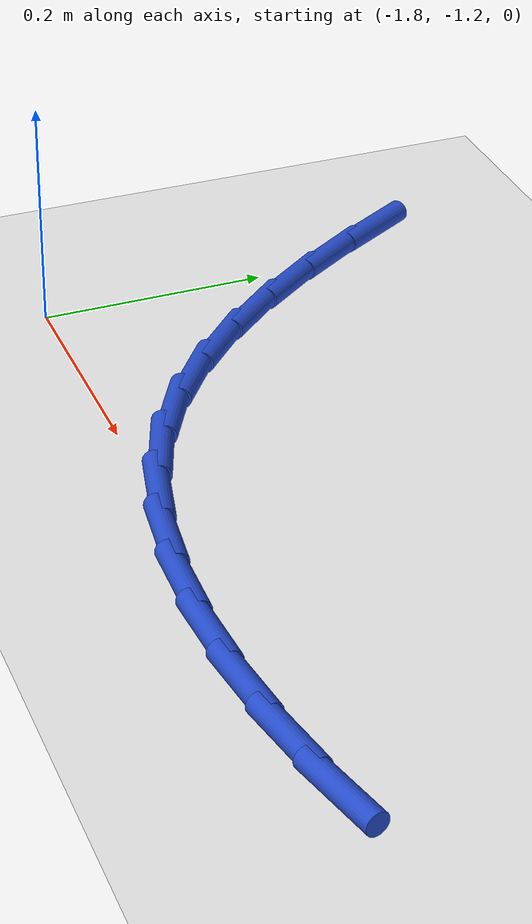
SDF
<sdf version="1.6">
 <world name="default">
  <model name="ground_plane">
   <static>1</static>
   <link name="link">
    <collision name="collision">
     <geometry><plane><normal>0 0 1</normal><size>100 100</size></plane></geometry>
     <surface><friction><ode><mu>100</mu><mu2>50</mu2></ode></friction></surface>
    </collision>
    <visual name="visual">
     <cast_shadows>0</cast_shadows>
     <geometry><plane><normal>0 0 1</normal><size>100 100</size></plane></geometry>
     <material>
      <script><uri>file://media/materials/scripts/gazebo.material</uri><name>Gazebo/WhiteGlow</name></script>
     </material>
    </visual>
   </link>
  </model>
  <model name="line">
   <link name="link_77">
    <pose>-1.8354146666036169 -0.8727360278206092 0.01 0 1.57 -1.0472368694980332</pose>
    <collision name="collision">
     <geometry><cylinder><radius>0.01</radius><length>0.08</length></cylinder></geometry>
    </collision>
    <visual name="visual">
     <material>
      <script><name>Gazebo/Blue</name><uri>file://media/materials/scripts/gazebo.material</uri></script>
     </material>
     <geometry><cylinder><radius>0.01</radius><length>0.08</length></cylinder></geometry>
    </visual>
   </link>
   <link name="link_78">
    <pose>-1.803546491498615 -0.9279383385983841 0.01 0 1.57 -0.9987521493293728</pose>
    <collision name="collision">
     <geometry><cylinder><radius>0.01</radius><length>0.08</length></cylinder></geometry>
    </collision>
    <visual name="visual">
     <material>
      <script><name>Gazebo/Blue</name><uri>file://media/materials/scripts/gazebo.material</uri></script>
     </material>
     <geometry><cylinder><radius>0.01</radius><length>0.08</length></cylinder></geometry>
    </visual>
   </link>
   <link name="link_79">
    <pose>-1.7696711744622455 -0.9805514985530543 0.01 0 1.57 -0.93582465292438</pose>
    <collision name="collision">
     <geometry><cylinder><radius>0.01</radius><length>0.08</length></cylinder></geometry>
    </collision>
    <visual name="visual">
     <material>
      <script><name>Gazebo/Blue</name><uri>file://media/materials/scripts/gazebo.material</uri></script>
     </material>
     <geometry><cylinder><radius>0.01</radius><length>0.08</length></cylinder></geometry>
    </visual>
   </link>
   <link name="link_80">
    <pose>-1.7333980535867768 -1.0297849817470581 0.01 0 1.57 -0.8566201769444357</pose>
    <collision name="collision">
     <geometry><cylinder><radius>0.01</radius><length>0.08</length></cylinder></geometry>
    </collision>
    <visual name="visual">
     <material>
      <script><name>Gazebo/Blue</name><uri>file://media/materials/scripts/gazebo.material</uri></script>
     </material>
     <geometry><cylinder><radius>0.01</radius><length>0.08</length></cylinder></geometry>
    </visual>
   </link>
   <link name="link_81">
    <pose>-1.6943364669644791 -1.0748482622428353 0.01 0 1.57 -0.7594375456715804</pose>
    <collision name="collision">
     <geometry><cylinder><radius>0.01</radius><length>0.08</length></cylinder></geometry>
    </collision>
    <visual name="visual">
     <material>
      <script><name>Gazebo/Blue</name><uri>file://media/materials/scripts/gazebo.material</uri></script>
     </material>
     <geometry><cylinder><radius>0.01</radius><length>0.08</length></cylinder></geometry>
    </visual>
   </link>
   <link name="link_82">
    <pose>-1.6520957526876259 -1.1149508141028228 0.01 0 1.57 -0.6434091676578019</pose>
    <collision name="collision">
     <geometry><cylinder><radius>0.01</radius><length>0.08</length></cylinder></geometry>
    </collision>
    <visual name="visual">
     <material>
      <script><name>Gazebo/Blue</name><uri>file://media/materials/scripts/gazebo.material</uri></script>
     </material>
     <geometry><cylinder><radius>0.01</radius><length>0.08</length></cylinder></geometry>
    </visual>
   </link>
   <link name="link_83">
    <pose>-1.606285248848487 -1.1493021113894601 0.01 0 1.57 -0.509539185002825</pose>
    <collision name="collision">
     <geometry><cylinder><radius>0.01</radius><length>0.08</length></cylinder></geometry>
    </collision>
    <visual name="visual">
     <material>
      <script><name>Gazebo/Blue</name><uri>file://media/materials/scripts/gazebo.material</uri></script>
     </material>
     <geometry><cylinder><radius>0.01</radius><length>0.08</length></cylinder></geometry>
    </visual>
   </link>
   <link name="link_84">
    <pose>-1.556514412141404 -1.1771117592969456 0.01 0 1.57 -0.3677369219670457</pose>
    <collision name="collision">
     <geometry><cylinder><radius>0.01</radius><length>0.08</length></cylinder></geometry>
    </collision>
    <visual name="visual">
     <material>
      <script><name>Gazebo/Blue</name><uri>file://media/materials/scripts/gazebo.material</uri></script>
     </material>
     <geometry><cylinder><radius>0.01</radius><length>0.08</length></cylinder></geometry>
    </visual>
   </link>
   <link name="link_85">
    <pose>-1.502643171510194 -1.1978662963520426 0.01 0 1.57 -0.24027841752368456</pose>
    <collision name="collision">
     <geometry><cylinder><radius>0.01</radius><length>0.08</length></cylinder></geometry>
    </collision>
    <visual name="visual">
     <material>
      <script><name>Gazebo/Blue</name><uri>file://media/materials/scripts/gazebo.material</uri></script>
     </material>
     <geometry><cylinder><radius>0.01</radius><length>0.08</length></cylinder></geometry>
    </visual>
   </link>
   <link name="link_86">
    <pose>-1.4453104045410696 -1.2119135015737765 0.01 0 1.57 -0.1301600959925953</pose>
    <collision name="collision">
     <geometry><cylinder><radius>0.01</radius><length>0.08</length></cylinder></geometry>
    </collision>
    <visual name="visual">
     <material>
      <script><name>Gazebo/Blue</name><uri>file://media/materials/scripts/gazebo.material</uri></script>
     </material>
     <geometry><cylinder><radius>0.01</radius><length>0.08</length></cylinder></geometry>
    </visual>
   </link>
   <link name="link_87">
    <pose>-1.3853059746511946 -1.219768090675452 0.01 0 1.57 -0.035157930746081804</pose>
    <collision name="collision">
     <geometry><cylinder><radius>0.01</radius><length>0.08</length></cylinder></geometry>
    </collision>
    <visual name="visual">
     <material>
      <script><name>Gazebo/Blue</name><uri>file://media/materials/scripts/gazebo.material</uri></script>
     </material>
     <geometry><cylinder><radius>0.01</radius><length>0.08</length></cylinder></geometry>
    </visual>
   </link>
   <link name="link_88">
    <pose>-1.3234197452577332 -1.2219447793703735 0.01 0 1.57 0.047385635163830014</pose>
    <collision name="collision">
     <geometry><cylinder><radius>0.01</radius><length>0.08</length></cylinder></geometry>
    </collision>
    <visual name="visual">
     <material>
      <script><name>Gazebo/Blue</name><uri>file://media/materials/scripts/gazebo.material</uri></script>
     </material>
     <geometry><cylinder><radius>0.01</radius><length>0.08</length></cylinder></geometry>
    </visual>
   </link>
   <link name="link_89">
    <pose>-1.2604415797778494 -1.2189582833718449 0.01 0 1.57 0.12007283086667957</pose>
    <collision name="collision">
     <geometry><cylinder><radius>0.01</radius><length>0.08</length></cylinder></geometry>
    </collision>
    <visual name="visual">
     <material>
      <script><name>Gazebo/Blue</name><uri>file://media/materials/scripts/gazebo.material</uri></script>
     </material>
     <geometry><cylinder><radius>0.01</radius><length>0.08</length></cylinder></geometry>
    </visual>
   </link>
   <link name="link_90">
    <pose>-1.1971613416287084 -1.2113233183931706 0.01 0 1.57 0.1852730929046157</pose>
    <collision name="collision">
     <geometry><cylinder><radius>0.01</radius><length>0.08</length></cylinder></geometry>
    </collision>
    <visual name="visual">
     <material>
      <script><name>Gazebo/Blue</name><uri>file://media/materials/scripts/gazebo.material</uri></script>
     </material>
     <geometry><cylinder><radius>0.01</radius><length>0.08</length></cylinder></geometry>
    </visual>
   </link>
   <link name="link_91">
    <pose>-1.1343688942274746 -1.1995546001476551 0.01 0 1.57 0.2451172379419935</pose>
    <collision name="collision">
     <geometry><cylinder><radius>0.01</radius><length>0.08</length></cylinder></geometry>
    </collision>
    <visual name="visual">
     <material>
      <script><name>Gazebo/Blue</name><uri>file://media/materials/scripts/gazebo.material</uri></script>
     </material>
     <geometry><cylinder><radius>0.01</radius><length>0.08</length></cylinder></geometry>
    </visual>
   </link>
  </model>
 </world>
</sdf>
